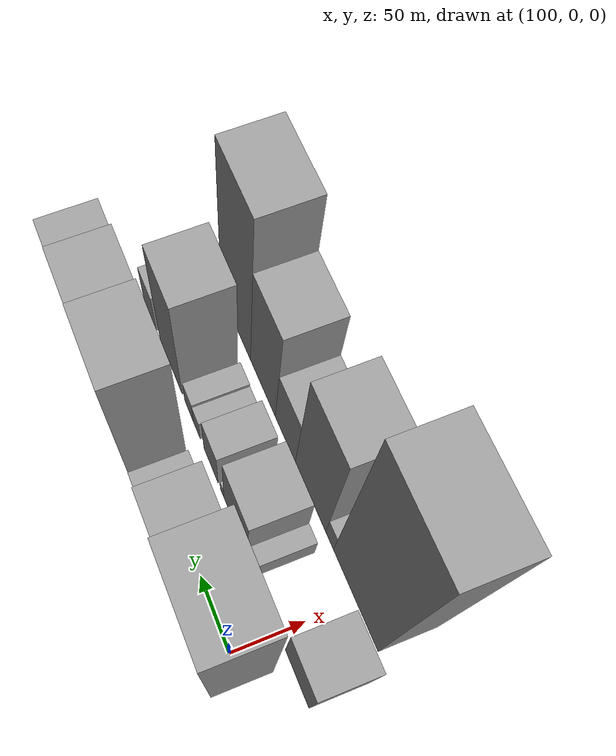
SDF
<sdf version="1.6">
 <world name="default">
  <model name="building_17">
   <static>1</static>
   <pose>100.0000 10.0317 0 0.000000 0.000000 0.000000</pose>
   <link name="link">
    <pose>0 0 90.00 0 0 0</pose>
    <collision name="collision"><geometry><box><size>40.0000 60.5755 180.0000</size></box></geometry></collision>
    <visual name="visual">
     <cast_shadows>0</cast_shadows>
     <geometry><box><size>40.0000 60.5755 180.0000</size></box></geometry>
     <material>
      <script>
       <uri>model://grey_wall/materials/scripts</uri>
       <uri>model://grey_wall/materials/textures</uri>
       <name>vrc/grey_wall</name>
      </script>
     </material>
    </visual>
   </link>
  </model>
  <model name="building_18">
   <static>1</static>
   <pose>100.0000 53.0055 0 0.000000 0.000000 0.000000</pose>
   <link name="link">
    <pose>0 0 9.00 0 0 0</pose>
    <collision name="collision"><geometry><box><size>40.0000 7.3721 18.0000</size></box></geometry></collision>
    <visual name="visual">
     <cast_shadows>0</cast_shadows>
     <geometry><box><size>40.0000 7.3721 18.0000</size></box></geometry>
     <material>
      <script>
       <uri>model://grey_wall/materials/scripts</uri>
       <uri>model://grey_wall/materials/textures</uri>
       <name>vrc/grey_wall</name>
      </script>
     </material>
    </visual>
   </link>
  </model>
  <model name="building_19">
   <static>1</static>
   <pose>100.0000 73.1179 0 0.000000 0.000000 0.000000</pose>
   <link name="link">
    <pose>0 0 49.50 0 0 0</pose>
    <collision name="collision"><geometry><box><size>40.0000 32.8527 99.0000</size></box></geometry></collision>
    <visual name="visual">
     <cast_shadows>0</cast_shadows>
     <geometry><box><size>40.0000 32.8527 99.0000</size></box></geometry>
     <material>
      <script>
       <uri>model://grey_wall/materials/scripts</uri>
       <uri>model://grey_wall/materials/textures</uri>
       <name>vrc/grey_wall</name>
      </script>
     </material>
    </visual>
   </link>
  </model>
  <model name="building_20">
   <static>1</static>
   <pose>100.0000 93.9917 0 0.000000 0.000000 0.000000</pose>
   <link name="link">
    <pose>0 0 10.50 0 0 0</pose>
    <collision name="collision"><geometry><box><size>40.0000 8.8949 21.0000</size></box></geometry></collision>
    <visual name="visual">
     <cast_shadows>0</cast_shadows>
     <geometry><box><size>40.0000 8.8949 21.0000</size></box></geometry>
     <material>
      <script>
       <uri>model://grey_wall/materials/scripts</uri>
       <uri>model://grey_wall/materials/textures</uri>
       <name>vrc/grey_wall</name>
      </script>
     </material>
    </visual>
   </link>
  </model>
  <model name="building_21">
   <static>1</static>
   <pose>100.0000 112.7230 0 0.000000 0.000000 0.000000</pose>
   <link name="link">
    <pose>0 0 15.00 0 0 0</pose>
    <collision name="collision"><geometry><box><size>40.0000 16.5676 30.0000</size></box></geometry></collision>
    <visual name="visual">
     <cast_shadows>0</cast_shadows>
     <geometry><box><size>40.0000 16.5676 30.0000</size></box></geometry>
     <material>
      <script>
       <uri>model://grey_wall/materials/scripts</uri>
       <uri>model://grey_wall/materials/textures</uri>
       <name>vrc/grey_wall</name>
      </script>
     </material>
    </visual>
   </link>
  </model>
  <model name="building_22">
   <static>1</static>
   <pose>100.0000 155.3587 0 0.000000 0.000000 0.000000</pose>
   <link name="link">
    <pose>0 0 72.00 0 0 0</pose>
    <collision name="collision"><geometry><box><size>40.0000 52.7038 144.0000</size></box></geometry></collision>
    <visual name="visual">
     <cast_shadows>0</cast_shadows>
     <geometry><box><size>40.0000 52.7038 144.0000</size></box></geometry>
     <material>
      <script>
       <uri>model://grey_wall/materials/scripts</uri>
       <uri>model://grey_wall/materials/textures</uri>
       <name>vrc/grey_wall</name>
      </script>
     </material>
    </visual>
   </link>
  </model>
  <model name="building_23">
   <static>1</static>
   <pose>100.0000 204.7117 0 0.000000 0.000000 0.000000</pose>
   <link name="link">
    <pose>0 0 64.50 0 0 0</pose>
    <collision name="collision"><geometry><box><size>40.0000 46.0022 129.0000</size></box></geometry></collision>
    <visual name="visual">
     <cast_shadows>0</cast_shadows>
     <geometry><box><size>40.0000 46.0022 129.0000</size></box></geometry>
     <material>
      <script>
       <uri>model://grey_wall/materials/scripts</uri>
       <uri>model://grey_wall/materials/textures</uri>
       <name>vrc/grey_wall</name>
      </script>
     </material>
    </visual>
   </link>
  </model>
  <model name="building_24">
   <static>1</static>
   <pose>100.0000 244.3947 0 0.000000 0.000000 0.000000</pose>
   <link name="link">
    <pose>0 0 54.00 0 0 0</pose>
    <collision name="collision"><geometry><box><size>40.0000 33.3637 108.0000</size></box></geometry></collision>
    <visual name="visual">
     <cast_shadows>0</cast_shadows>
     <geometry><box><size>40.0000 33.3637 108.0000</size></box></geometry>
     <material>
      <script>
       <uri>model://grey_wall/materials/scripts</uri>
       <uri>model://grey_wall/materials/textures</uri>
       <name>vrc/grey_wall</name>
      </script>
     </material>
    </visual>
   </link>
  </model>
  <model name="building_47">
   <static>1</static>
   <pose>152.0000 -29.1522 0 0.000000 0.000000 0.000000</pose>
   <link name="link">
    <pose>0 0 31.50 0 0 0</pose>
    <collision name="collision"><geometry><box><size>40.0000 36.6495 63.0000</size></box></geometry></collision>
    <visual name="visual">
     <cast_shadows>0</cast_shadows>
     <geometry><box><size>40.0000 36.6495 63.0000</size></box></geometry>
     <material>
      <script>
       <uri>model://grey_wall/materials/scripts</uri>
       <uri>model://grey_wall/materials/textures</uri>
       <name>vrc/grey_wall</name>
      </script>
     </material>
    </visual>
   </link>
  </model>
  <model name="building_48">
   <static>1</static>
   <pose>152.0000 44.2119 0 0.000000 0.000000 0.000000</pose>
   <link name="link">
    <pose>0 0 13.50 0 0 0</pose>
    <collision name="collision"><geometry><box><size>40.0000 13.3596 27.0000</size></box></geometry></collision>
    <visual name="visual">
     <cast_shadows>0</cast_shadows>
     <geometry><box><size>40.0000 13.3596 27.0000</size></box></geometry>
     <material>
      <script>
       <uri>model://grey_wall/materials/scripts</uri>
       <uri>model://grey_wall/materials/textures</uri>
       <name>vrc/grey_wall</name>
      </script>
     </material>
    </visual>
   </link>
  </model>
  <model name="building_49">
   <static>1</static>
   <pose>152.0000 71.4884 0 0.000000 0.000000 0.000000</pose>
   <link name="link">
    <pose>0 0 34.50 0 0 0</pose>
    <collision name="collision"><geometry><box><size>40.0000 41.1933 69.0000</size></box></geometry></collision>
    <visual name="visual">
     <cast_shadows>0</cast_shadows>
     <geometry><box><size>40.0000 41.1933 69.0000</size></box></geometry>
     <material>
      <script>
       <uri>model://grey_wall/materials/scripts</uri>
       <uri>model://grey_wall/materials/textures</uri>
       <name>vrc/grey_wall</name>
      </script>
     </material>
    </visual>
   </link>
  </model>
  <model name="building_50">
   <static>1</static>
   <pose>152.0000 95.3189 0 0.000000 0.000000 0.000000</pose>
   <link name="link">
    <pose>0 0 7.50 0 0 0</pose>
    <collision name="collision"><geometry><box><size>40.0000 6.4677 15.0000</size></box></geometry></collision>
    <visual name="visual">
     <cast_shadows>0</cast_shadows>
     <geometry><box><size>40.0000 6.4677 15.0000</size></box></geometry>
     <material>
      <script>
       <uri>model://grey_wall/materials/scripts</uri>
       <uri>model://grey_wall/materials/textures</uri>
       <name>vrc/grey_wall</name>
      </script>
     </material>
    </visual>
   </link>
  </model>
  <model name="building_51">
   <static>1</static>
   <pose>152.0000 115.4108 0 0.000000 0.000000 0.000000</pose>
   <link name="link">
    <pose>0 0 24.00 0 0 0</pose>
    <collision name="collision"><geometry><box><size>40.0000 25.7161 48.0000</size></box></geometry></collision>
    <visual name="visual">
     <cast_shadows>0</cast_shadows>
     <geometry><box><size>40.0000 25.7161 48.0000</size></box></geometry>
     <material>
      <script>
       <uri>model://grey_wall/materials/scripts</uri>
       <uri>model://grey_wall/materials/textures</uri>
       <name>vrc/grey_wall</name>
      </script>
     </material>
    </visual>
   </link>
  </model>
  <model name="building_52">
   <static>1</static>
   <pose>152.0000 141.4687 0 0.000000 0.000000 0.000000</pose>
   <link name="link">
    <pose>0 0 13.50 0 0 0</pose>
    <collision name="collision"><geometry><box><size>40.0000 12.3997 27.0000</size></box></geometry></collision>
    <visual name="visual">
     <cast_shadows>0</cast_shadows>
     <geometry><box><size>40.0000 12.3997 27.0000</size></box></geometry>
     <material>
      <script>
       <uri>model://grey_wall/materials/scripts</uri>
       <uri>model://grey_wall/materials/textures</uri>
       <name>vrc/grey_wall</name>
      </script>
     </material>
    </visual>
   </link>
  </model>
  <model name="building_53">
   <static>1</static>
   <pose>152.0000 156.0027 0 0.000000 0.000000 0.000000</pose>
   <link name="link">
    <pose>0 0 15.00 0 0 0</pose>
    <collision name="collision"><geometry><box><size>40.0000 16.6683 30.0000</size></box></geometry></collision>
    <visual name="visual">
     <cast_shadows>0</cast_shadows>
     <geometry><box><size>40.0000 16.6683 30.0000</size></box></geometry>
     <material>
      <script>
       <uri>model://grey_wall/materials/scripts</uri>
       <uri>model://grey_wall/materials/textures</uri>
       <name>vrc/grey_wall</name>
      </script>
     </material>
    </visual>
   </link>
  </model>
  <model name="building_54">
   <static>1</static>
   <pose>152.0000 190.8599 0 0.000000 0.000000 0.000000</pose>
   <link name="link">
    <pose>0 0 61.50 0 0 0</pose>
    <collision name="collision"><geometry><box><size>40.0000 43.0461 123.0000</size></box></geometry></collision>
    <visual name="visual">
     <cast_shadows>0</cast_shadows>
     <geometry><box><size>40.0000 43.0461 123.0000</size></box></geometry>
     <material>
      <script>
       <uri>model://grey_wall/materials/scripts</uri>
       <uri>model://grey_wall/materials/textures</uri>
       <name>vrc/grey_wall</name>
      </script>
     </material>
    </visual>
   </link>
  </model>
  <model name="building_55">
   <static>1</static>
   <pose>152.0000 233.0276 0 0.000000 0.000000 0.000000</pose>
   <link name="link">
    <pose>0 0 22.50 0 0 0</pose>
    <collision name="collision"><geometry><box><size>40.0000 25.2893 45.0000</size></box></geometry></collision>
    <visual name="visual">
     <cast_shadows>0</cast_shadows>
     <geometry><box><size>40.0000 25.2893 45.0000</size></box></geometry>
     <material>
      <script>
       <uri>model://grey_wall/materials/scripts</uri>
       <uri>model://grey_wall/materials/textures</uri>
       <name>vrc/grey_wall</name>
      </script>
     </material>
    </visual>
   </link>
  </model>
  <model name="building_81">
   <static>1</static>
   <pose>204.0000 1.1077 0 0.000000 0.000000 0.000000</pose>
   <link name="link">
    <pose>0 0 106.50 0 0 0</pose>
    <collision name="collision"><geometry><box><size>40.0000 67.6982 213.0000</size></box></geometry></collision>
    <visual name="visual">
     <cast_shadows>0</cast_shadows>
     <geometry><box><size>40.0000 67.6982 213.0000</size></box></geometry>
     <material>
      <script>
       <uri>model://grey_wall/materials/scripts</uri>
       <uri>model://grey_wall/materials/textures</uri>
       <name>vrc/grey_wall</name>
      </script>
     </material>
    </visual>
   </link>
  </model>
  <model name="building_82">
   <static>1</static>
   <pose>204.0000 41.0829 0 0.000000 0.000000 0.000000</pose>
   <link name="link">
    <pose>0 0 13.50 0 0 0</pose>
    <collision name="collision"><geometry><box><size>40.0000 12.2522 27.0000</size></box></geometry></collision>
    <visual name="visual">
     <cast_shadows>0</cast_shadows>
     <geometry><box><size>40.0000 12.2522 27.0000</size></box></geometry>
     <material>
      <script>
       <uri>model://grey_wall/materials/scripts</uri>
       <uri>model://grey_wall/materials/textures</uri>
       <name>vrc/grey_wall</name>
      </script>
     </material>
    </visual>
   </link>
  </model>
  <model name="building_83">
   <static>1</static>
   <pose>204.0000 72.1895 0 0.000000 0.000000 0.000000</pose>
   <link name="link">
    <pose>0 0 67.50 0 0 0</pose>
    <collision name="collision"><geometry><box><size>40.0000 49.9611 135.0000</size></box></geometry></collision>
    <visual name="visual">
     <cast_shadows>0</cast_shadows>
     <geometry><box><size>40.0000 49.9611 135.0000</size></box></geometry>
     <material>
      <script>
       <uri>model://grey_wall/materials/scripts</uri>
       <uri>model://grey_wall/materials/textures</uri>
       <name>vrc/grey_wall</name>
      </script>
     </material>
    </visual>
   </link>
  </model>
  <model name="building_84">
   <static>1</static>
   <pose>204.0000 114.3619 0 0.000000 0.000000 0.000000</pose>
   <link name="link">
    <pose>0 0 33.00 0 0 0</pose>
    <collision name="collision"><geometry><box><size>40.0000 34.3838 66.0000</size></box></geometry></collision>
    <visual name="visual">
     <cast_shadows>0</cast_shadows>
     <geometry><box><size>40.0000 34.3838 66.0000</size></box></geometry>
     <material>
      <script>
       <uri>model://grey_wall/materials/scripts</uri>
       <uri>model://grey_wall/materials/textures</uri>
       <name>vrc/grey_wall</name>
      </script>
     </material>
    </visual>
   </link>
  </model>
  <model name="building_85">
   <static>1</static>
   <pose>204.0000 153.7274 0 0.000000 0.000000 0.000000</pose>
   <link name="link">
    <pose>0 0 58.50 0 0 0</pose>
    <collision name="collision"><geometry><box><size>40.0000 44.3472 117.0000</size></box></geometry></collision>
    <visual name="visual">
     <cast_shadows>0</cast_shadows>
     <geometry><box><size>40.0000 44.3472 117.0000</size></box></geometry>
     <material>
      <script>
       <uri>model://grey_wall/materials/scripts</uri>
       <uri>model://grey_wall/materials/textures</uri>
       <name>vrc/grey_wall</name>
      </script>
     </material>
    </visual>
   </link>
  </model>
  <model name="building_86">
   <static>1</static>
   <pose>204.0000 203.4536 0 0.000000 0.000000 0.000000</pose>
   <link name="link">
    <pose>0 0 85.50 0 0 0</pose>
    <collision name="collision"><geometry><box><size>40.0000 55.1051 171.0000</size></box></geometry></collision>
    <visual name="visual">
     <cast_shadows>0</cast_shadows>
     <geometry><box><size>40.0000 55.1051 171.0000</size></box></geometry>
     <material>
      <script>
       <uri>model://grey_wall/materials/scripts</uri>
       <uri>model://grey_wall/materials/textures</uri>
       <name>vrc/grey_wall</name>
      </script>
     </material>
    </visual>
   </link>
  </model>
 </world>
</sdf>
